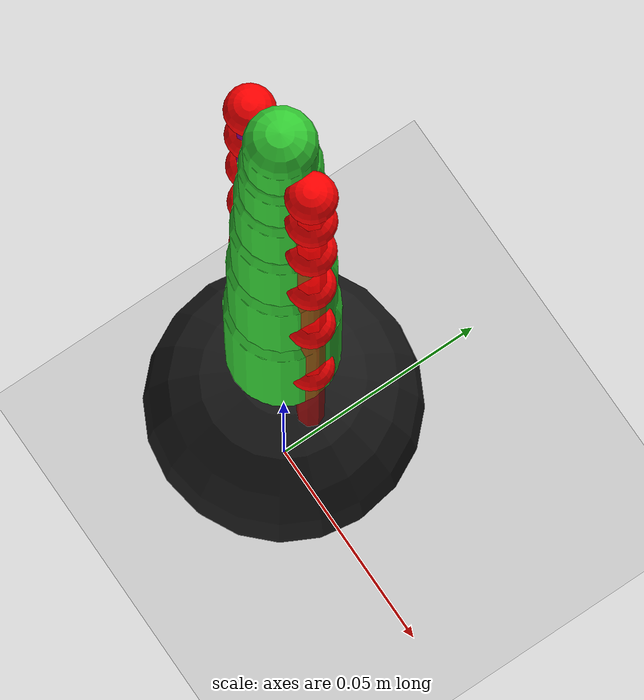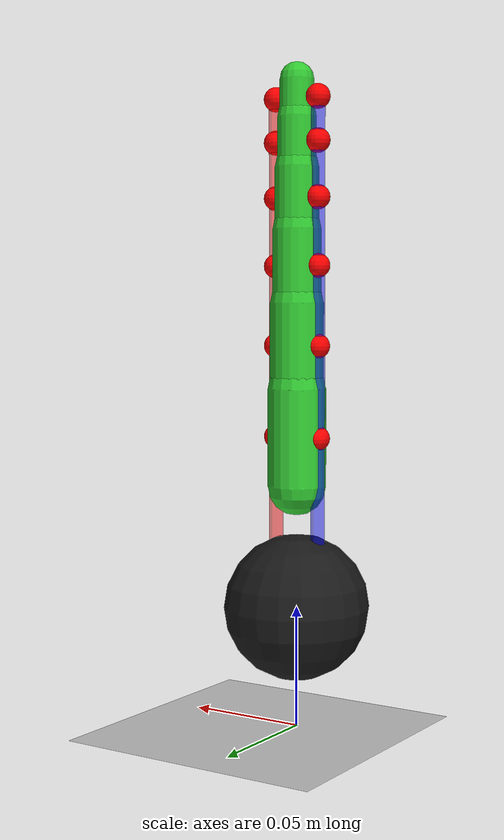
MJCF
<mujoco model="stick_simple">
  <compiler angle="degree"/>
  <option timestep="0.002" gravity="0 0 -9.81"/>

  <default>
    <joint type="hinge" axis="0 1 0" range="-45 45" damping="2.0" stiffness="0.5"/>
    <geom type="capsule" rgba="0.2 0.8 0.2 1" contype="1" conaffinity="1"/>
    <site size="0.005" rgba="1 0 0 1"/>
  </default>

  <worldbody>
    <!-- Ground -->
    <geom name="floor" type="plane" size="5 5 0.1" pos="0 0 0" rgba="0.8 0.8 0.8 1"/>

    <!-- Base fixed at origin -->
    <body name="base" pos="0 0 0.05">
      <geom type="sphere" size="0.03" rgba="0.1 0.1 0.1 1"/>

      <!-- Cable anchor points at base -->
      <site name="base_left" pos="0.01 0 0.02"/>
      <site name="base_right" pos="-0.01 0 0.02"/>

      <!-- Segment 0 (base segment) -->
      <body name="seg0" pos="0 0 0.05">
        <joint name="j0"/>
        <geom fromto="0 0 0  0 0 0.04" size="0.012" rgba="0.2 0.8 0.2 1"/>
        <site name="s0_left" pos="0.01 0 0.02"/>
        <site name="s0_right" pos="-0.01 0 0.02"/>

        <!-- Segment 1 -->
        <body name="seg1" pos="0 0 0.04">
          <joint name="j1"/>
          <geom fromto="0 0 0  0 0 0.035" size="0.011" rgba="0.2 0.8 0.2 1"/>
          <site name="s1_left" pos="0.01 0 0.0175"/>
          <site name="s1_right" pos="-0.01 0 0.0175"/>

          <!-- Segment 2 -->
          <body name="seg2" pos="0 0 0.035">
            <joint name="j2"/>
            <geom fromto="0 0 0  0 0 0.03" size="0.010" rgba="0.2 0.8 0.2 1"/>
            <site name="s2_left" pos="0.01 0 0.015"/>
            <site name="s2_right" pos="-0.01 0 0.015"/>

            <!-- Segment 3 -->
            <body name="seg3" pos="0 0 0.03">
              <joint name="j3"/>
              <geom fromto="0 0 0  0 0 0.025" size="0.009" rgba="0.2 0.8 0.2 1"/>
              <site name="s3_left" pos="0.01 0 0.0125"/>
              <site name="s3_right" pos="-0.01 0 0.0125"/>

              <!-- Segment 4 -->
              <body name="seg4" pos="0 0 0.025">
                <joint name="j4"/>
                <geom fromto="0 0 0  0 0 0.02" size="0.008" rgba="0.2 0.8 0.2 1"/>
                <site name="s4_left" pos="0.01 0 0.01"/>
                <site name="s4_right" pos="-0.01 0 0.01"/>

                <!-- Segment 5 (tip) -->
                <body name="seg5" pos="0 0 0.02">
                  <joint name="j5"/>
                  <geom fromto="0 0 0  0 0 0.015" size="0.007" rgba="0.2 0.8 0.2 1"/>
                  <site name="s5_left" pos="0.01 0 0.0075"/>
                  <site name="s5_right" pos="-0.01 0 0.0075"/>
                </body>
              </body>
            </body>
          </body>
        </body>
      </body>
    </body>
  </worldbody>

  <!-- Cable system: left and right cables that control bending -->
  <tendon>
    <spatial name="left_cable" width="0.003" rgba="1 0 0 0.5">
      <site site="base_left"/>
      <site site="s0_left"/>
      <site site="s1_left"/>
      <site site="s2_left"/>
      <site site="s3_left"/>
      <site site="s4_left"/>
      <site site="s5_left"/>
    </spatial>

    <spatial name="right_cable" width="0.003" rgba="0 0 1 0.5">
      <site site="base_right"/>
      <site site="s0_right"/>
      <site site="s1_right"/>
      <site site="s2_right"/>
      <site site="s3_right"/>
      <site site="s4_right"/>
      <site site="s5_right"/>
    </spatial>
  </tendon>

  <!-- Actuators: control cable lengths to create bending -->
  <actuator>
    <general name="left_motor" tendon="left_cable" gainprm="1000" biasprm="0 -1000 0" ctrlrange="-0.05 0.05"/>
    <general name="right_motor" tendon="right_cable" gainprm="1000" biasprm="0 -1000 0" ctrlrange="-0.05 0.05"/>
  </actuator>
</mujoco>
